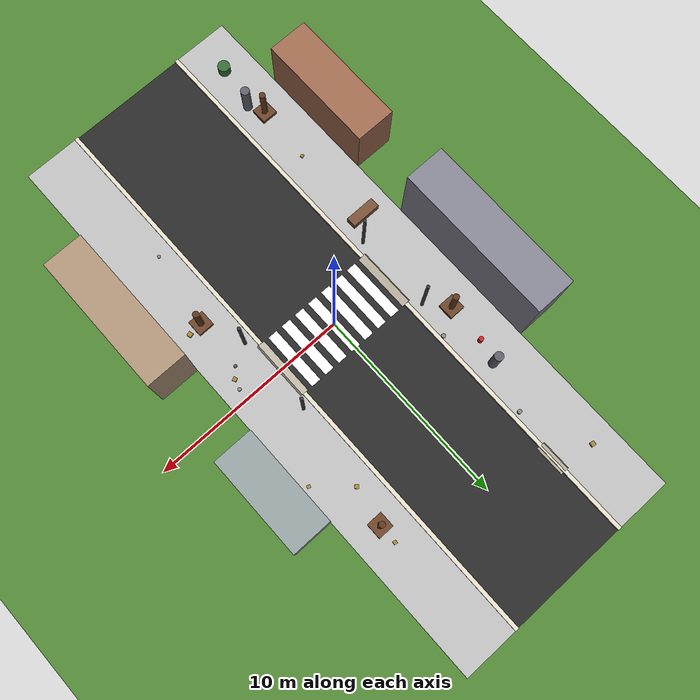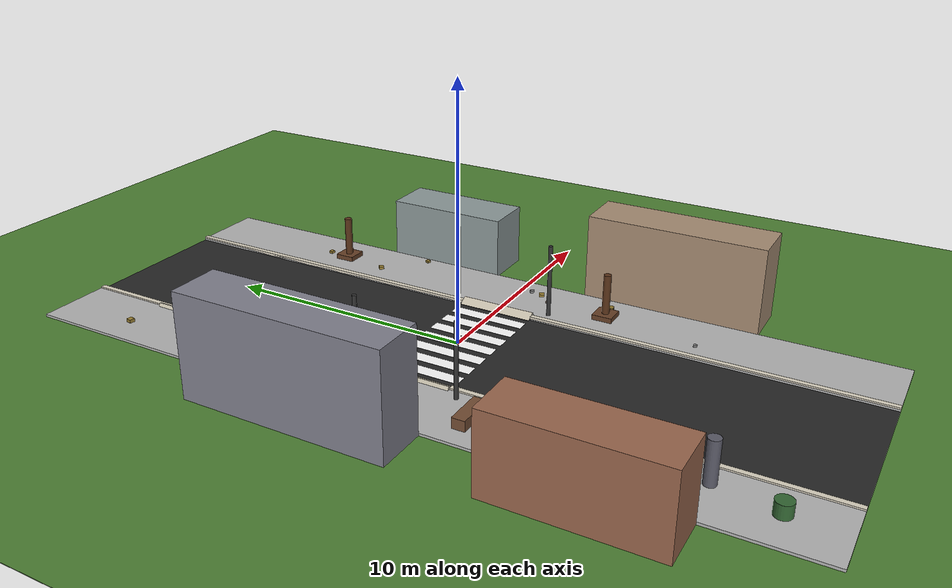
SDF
<?xml version="1.0" ?>
<sdf version="1.9">
  <world name="level2_standard">
    <physics name="1ms" type="ignore">
      <max_step_size>0.001</max_step_size>
      <real_time_factor>1.0</real_time_factor>
    </physics>
    <plugin filename="gz-sim-physics-system" name="gz::sim::systems::Physics"/>
    <plugin filename="gz-sim-scene-broadcaster-system" name="gz::sim::systems::SceneBroadcaster"/>
    <plugin filename="gz-sim-sensors-system" name="gz::sim::systems::Sensors">
      <render_engine>ogre2</render_engine>
    </plugin>
    <plugin filename="gz-sim-user-commands-system" name="gz::sim::systems::UserCommands"/>

    <light type="directional" name="sun">
      <cast_shadows>true</cast_shadows>
      <pose>0 0 10 0 0 0</pose>
      <diffuse>0.8 0.8 0.8 1</diffuse>
      <specular>0.2 0.2 0.2 1</specular>
      <attenuation><range>1000</range><constant>0.9</constant><linear>0.01</linear><quadratic>0.001</quadratic></attenuation>
      <direction>-0.5 0.1 -0.9</direction>
    </light>

    <!-- Level 2: 표준 밀도 - 정적 장애물 표준 밀도, 연석 존재 -->

    <model name="ground_plane_visual">
      <static>true</static>
      <pose>0 0 -0.01 0 0 0</pose>
      <link name="link">
        <collision name="collision"><geometry><box><size>100 100 0.02</size></box></geometry></collision>
        <visual name="visual"><geometry><box><size>100 100 0.02</size></box></geometry>
          <material><ambient>0.3 0.5 0.2 1</ambient><diffuse>0.3 0.5 0.2 1</diffuse></material></visual>
      </link>
    </model>

    <model name="road">
      <static>true</static>
      <pose>0 0 0.01 0 0 0</pose>
      <link name="link">
        <collision name="collision"><geometry><box><size>6.0 30.0 0.02</size></box></geometry></collision>
        <visual name="visual"><geometry><box><size>6.0 30.0 0.02</size></box></geometry>
          <material><ambient>0.15 0.15 0.15 1</ambient><diffuse>0.15 0.15 0.15 1</diffuse></material></visual>
      </link>
    </model>

    <model name="sidewalk_left">
      <static>true</static>
      <pose>-4.5 0 0.05 0 0 0</pose>
      <link name="link">
        <collision name="collision"><geometry><box><size>3.0 30.0 0.1</size></box></geometry></collision>
        <visual name="visual"><geometry><box><size>3.0 30.0 0.1</size></box></geometry>
          <material><ambient>0.7 0.7 0.7 1</ambient><diffuse>0.7 0.7 0.7 1</diffuse></material></visual>
      </link>
    </model>

    <model name="sidewalk_right">
      <static>true</static>
      <pose>4.5 0 0.05 0 0 0</pose>
      <link name="link">
        <collision name="collision"><geometry><box><size>3.0 30.0 0.1</size></box></geometry></collision>
        <visual name="visual"><geometry><box><size>3.0 30.0 0.1</size></box></geometry>
          <material><ambient>0.7 0.7 0.7 1</ambient><diffuse>0.7 0.7 0.7 1</diffuse></material></visual>
      </link>
    </model>

    <model name="crosswalk_1">
      <static>true</static>
      <pose>-2.4 0 0.02 0 0 0</pose>
      <link name="link">
        <collision name="collision"><geometry><box><size>0.5 3 0.01</size></box></geometry></collision>
        <visual name="visual"><geometry><box><size>0.5 3 0.01</size></box></geometry>
          <material><ambient>1 1 1 1</ambient><diffuse>1 1 1 1</diffuse></material></visual>
      </link>
    </model>

    <model name="crosswalk_2">
      <static>true</static>
      <pose>-1.6 0 0.02 0 0 0</pose>
      <link name="link">
        <collision name="collision"><geometry><box><size>0.5 3 0.01</size></box></geometry></collision>
        <visual name="visual"><geometry><box><size>0.5 3 0.01</size></box></geometry>
          <material><ambient>1 1 1 1</ambient><diffuse>1 1 1 1</diffuse></material></visual>
      </link>
    </model>

    <model name="crosswalk_3">
      <static>true</static>
      <pose>-0.8 0 0.02 0 0 0</pose>
      <link name="link">
        <collision name="collision"><geometry><box><size>0.5 3 0.01</size></box></geometry></collision>
        <visual name="visual"><geometry><box><size>0.5 3 0.01</size></box></geometry>
          <material><ambient>1 1 1 1</ambient><diffuse>1 1 1 1</diffuse></material></visual>
      </link>
    </model>

    <model name="crosswalk_4">
      <static>true</static>
      <pose>0.0 0 0.02 0 0 0</pose>
      <link name="link">
        <collision name="collision"><geometry><box><size>0.5 3 0.01</size></box></geometry></collision>
        <visual name="visual"><geometry><box><size>0.5 3 0.01</size></box></geometry>
          <material><ambient>1 1 1 1</ambient><diffuse>1 1 1 1</diffuse></material></visual>
      </link>
    </model>

    <model name="crosswalk_5">
      <static>true</static>
      <pose>0.8 0 0.02 0 0 0</pose>
      <link name="link">
        <collision name="collision"><geometry><box><size>0.5 3 0.01</size></box></geometry></collision>
        <visual name="visual"><geometry><box><size>0.5 3 0.01</size></box></geometry>
          <material><ambient>1 1 1 1</ambient><diffuse>1 1 1 1</diffuse></material></visual>
      </link>
    </model>

    <model name="crosswalk_6">
      <static>true</static>
      <pose>1.6 0 0.02 0 0 0</pose>
      <link name="link">
        <collision name="collision"><geometry><box><size>0.5 3 0.01</size></box></geometry></collision>
        <visual name="visual"><geometry><box><size>0.5 3 0.01</size></box></geometry>
          <material><ambient>1 1 1 1</ambient><diffuse>1 1 1 1</diffuse></material></visual>
      </link>
    </model>

    <model name="crosswalk_7">
      <static>true</static>
      <pose>2.4 0 0.02 0 0 0</pose>
      <link name="link">
        <collision name="collision"><geometry><box><size>0.5 3 0.01</size></box></geometry></collision>
        <visual name="visual"><geometry><box><size>0.5 3 0.01</size></box></geometry>
          <material><ambient>1 1 1 1</ambient><diffuse>1 1 1 1</diffuse></material></visual>
      </link>
    </model>

    <model name="curb_left_south">
      <static>true</static>
      <pose>-3.1 -8.25 0.08499999999999999 0 0 0</pose>
      <link name="link">
        <collision name="collision"><geometry><box><size>0.2 13.5 0.15</size></box></geometry></collision>
        <visual name="visual"><geometry><box><size>0.2 13.5 0.15</size></box></geometry>
          <material><ambient>0.85 0.82 0.75 1</ambient><diffuse>0.85 0.82 0.75 1</diffuse></material></visual>
      </link>
    </model>

    <model name="curb_left_north">
      <static>true</static>
      <pose>-3.1 8.25 0.08499999999999999 0 0 0</pose>
      <link name="link">
        <collision name="collision"><geometry><box><size>0.2 13.5 0.15</size></box></geometry></collision>
        <visual name="visual"><geometry><box><size>0.2 13.5 0.15</size></box></geometry>
          <material><ambient>0.85 0.82 0.75 1</ambient><diffuse>0.85 0.82 0.75 1</diffuse></material></visual>
      </link>
    </model>

    <model name="curb_right_south">
      <static>true</static>
      <pose>3.1 -8.25 0.08499999999999999 0 0 0</pose>
      <link name="link">
        <collision name="collision"><geometry><box><size>0.2 13.5 0.15</size></box></geometry></collision>
        <visual name="visual"><geometry><box><size>0.2 13.5 0.15</size></box></geometry>
          <material><ambient>0.85 0.82 0.75 1</ambient><diffuse>0.85 0.82 0.75 1</diffuse></material></visual>
      </link>
    </model>

    <model name="curb_right_north">
      <static>true</static>
      <pose>3.1 8.25 0.08499999999999999 0 0 0</pose>
      <link name="link">
        <collision name="collision"><geometry><box><size>0.2 13.5 0.15</size></box></geometry></collision>
        <visual name="visual"><geometry><box><size>0.2 13.5 0.15</size></box></geometry>
          <material><ambient>0.85 0.82 0.75 1</ambient><diffuse>0.85 0.82 0.75 1</diffuse></material></visual>
      </link>
    </model>

    <model name="curb_ramp_left">
      <static>true</static>
      <pose>-3.1 0 0.075 0 0.5 0</pose>
      <link name="link">
        <collision name="collision"><geometry><box><size>0.4 3 0.15</size></box></geometry></collision>
        <visual name="visual"><geometry><box><size>0.4 3 0.15</size></box></geometry>
          <material><ambient>0.75 0.72 0.65 1</ambient><diffuse>0.75 0.72 0.65 1</diffuse></material></visual>
      </link>
    </model>

    <model name="curb_ramp_right">
      <static>true</static>
      <pose>3.1 0 0.075 0 -0.5 0</pose>
      <link name="link">
        <collision name="collision"><geometry><box><size>0.4 3 0.15</size></box></geometry></collision>
        <visual name="visual"><geometry><box><size>0.4 3 0.15</size></box></geometry>
          <material><ambient>0.75 0.72 0.65 1</ambient><diffuse>0.75 0.72 0.65 1</diffuse></material></visual>
      </link>
    </model>

    <model name="curb_extra_ramp_0">
      <static>true</static>
      <pose>-3.1 10.94 0.075 0 0.5 0</pose>
      <link name="link">
        <collision name="collision"><geometry><box><size>0.4 1.5 0.15</size></box></geometry></collision>
        <visual name="visual"><geometry><box><size>0.4 1.5 0.15</size></box></geometry>
          <material><ambient>0.75 0.72 0.65 1</ambient><diffuse>0.75 0.72 0.65 1</diffuse></material></visual>
      </link>
    </model>

    <model name="building_left_1">
      <static>true</static>
      <pose>-7.0 -8 1.5 0 0 0</pose>
      <link name="link">
        <collision name="collision"><geometry><box><size>2 6 3</size></box></geometry></collision>
        <visual name="visual"><geometry><box><size>2 6 3</size></box></geometry>
          <material><ambient>0.6 0.4 0.3 1</ambient><diffuse>0.6 0.4 0.3 1</diffuse></material></visual>
      </link>
    </model>

    <model name="building_left_2">
      <static>true</static>
      <pose>-7.0 2 2 0 0 0</pose>
      <link name="link">
        <collision name="collision"><geometry><box><size>2 8 4</size></box></geometry></collision>
        <visual name="visual"><geometry><box><size>2 8 4</size></box></geometry>
          <material><ambient>0.5 0.5 0.55 1</ambient><diffuse>0.5 0.5 0.55 1</diffuse></material></visual>
      </link>
    </model>

    <model name="building_right_1">
      <static>true</static>
      <pose>7.0 -6 1.75 0 0 0</pose>
      <link name="link">
        <collision name="collision"><geometry><box><size>2 7 3.5</size></box></geometry></collision>
        <visual name="visual"><geometry><box><size>2 7 3.5</size></box></geometry>
          <material><ambient>0.65 0.55 0.45 1</ambient><diffuse>0.65 0.55 0.45 1</diffuse></material></visual>
      </link>
    </model>

    <model name="building_right_2">
      <static>true</static>
      <pose>7.0 4 1.25 0 0 0</pose>
      <link name="link">
        <collision name="collision"><geometry><box><size>2 5 2.5</size></box></geometry></collision>
        <visual name="visual"><geometry><box><size>2 5 2.5</size></box></geometry>
          <material><ambient>0.55 0.6 0.6 1</ambient><diffuse>0.55 0.6 0.6 1</diffuse></material></visual>
      </link>
    </model>

    <model name="tree_1">
      <static>true</static>
      <pose>-4.5 -10 0.15 0 0 0</pose>
      <link name="link">
        <collision name="collision"><geometry><box><size>0.8 0.8 0.3</size></box></geometry></collision>
        <visual name="visual"><geometry><box><size>0.8 0.8 0.3</size></box></geometry>
          <material><ambient>0.4 0.25 0.15 1</ambient><diffuse>0.4 0.25 0.15 1</diffuse></material></visual>
      </link>
    </model>

    <model name="tree_1_trunk">
      <static>true</static>
      <pose>-4.5 -10 1.1 0 0 0</pose>
      <link name="link">
        <collision name="collision"><geometry><cylinder><radius>0.15</radius><length>1.6</length></cylinder></geometry></collision>
        <visual name="visual"><geometry><cylinder><radius>0.15</radius><length>1.6</length></cylinder></geometry>
          <material><ambient>0.35 0.2 0.1 1</ambient><diffuse>0.35 0.2 0.1 1</diffuse></material></visual>
      </link>
    </model>

    <model name="tree_2">
      <static>true</static>
      <pose>4.5 -4 0.15 0 0 0</pose>
      <link name="link">
        <collision name="collision"><geometry><box><size>0.8 0.8 0.3</size></box></geometry></collision>
        <visual name="visual"><geometry><box><size>0.8 0.8 0.3</size></box></geometry>
          <material><ambient>0.4 0.25 0.15 1</ambient><diffuse>0.4 0.25 0.15 1</diffuse></material></visual>
      </link>
    </model>

    <model name="tree_2_trunk">
      <static>true</static>
      <pose>4.5 -4 1.1 0 0 0</pose>
      <link name="link">
        <collision name="collision"><geometry><cylinder><radius>0.15</radius><length>1.6</length></cylinder></geometry></collision>
        <visual name="visual"><geometry><cylinder><radius>0.15</radius><length>1.6</length></cylinder></geometry>
          <material><ambient>0.35 0.2 0.1 1</ambient><diffuse>0.35 0.2 0.1 1</diffuse></material></visual>
      </link>
    </model>

    <model name="tree_3">
      <static>true</static>
      <pose>-4.5 3 0.15 0 0 0</pose>
      <link name="link">
        <collision name="collision"><geometry><box><size>0.8 0.8 0.3</size></box></geometry></collision>
        <visual name="visual"><geometry><box><size>0.8 0.8 0.3</size></box></geometry>
          <material><ambient>0.4 0.25 0.15 1</ambient><diffuse>0.4 0.25 0.15 1</diffuse></material></visual>
      </link>
    </model>

    <model name="tree_3_trunk">
      <static>true</static>
      <pose>-4.5 3 1.1 0 0 0</pose>
      <link name="link">
        <collision name="collision"><geometry><cylinder><radius>0.15</radius><length>1.6</length></cylinder></geometry></collision>
        <visual name="visual"><geometry><cylinder><radius>0.15</radius><length>1.6</length></cylinder></geometry>
          <material><ambient>0.35 0.2 0.1 1</ambient><diffuse>0.35 0.2 0.1 1</diffuse></material></visual>
      </link>
    </model>

    <model name="tree_4">
      <static>true</static>
      <pose>4.5 8 0.15 0 0 0</pose>
      <link name="link">
        <collision name="collision"><geometry><box><size>0.8 0.8 0.3</size></box></geometry></collision>
        <visual name="visual"><geometry><box><size>0.8 0.8 0.3</size></box></geometry>
          <material><ambient>0.4 0.25 0.15 1</ambient><diffuse>0.4 0.25 0.15 1</diffuse></material></visual>
      </link>
    </model>

    <model name="tree_4_trunk">
      <static>true</static>
      <pose>4.5 8 1.1 0 0 0</pose>
      <link name="link">
        <collision name="collision"><geometry><cylinder><radius>0.15</radius><length>1.6</length></cylinder></geometry></collision>
        <visual name="visual"><geometry><cylinder><radius>0.15</radius><length>1.6</length></cylinder></geometry>
          <material><ambient>0.35 0.2 0.1 1</ambient><diffuse>0.35 0.2 0.1 1</diffuse></material></visual>
      </link>
    </model>

    <model name="bench_1">
      <static>true</static>
      <pose>-4.5 -3 0.25 0 0 0</pose>
      <link name="link">
        <collision name="collision"><geometry><box><size>1.5 0.5 0.5</size></box></geometry></collision>
        <visual name="visual"><geometry><box><size>1.5 0.5 0.5</size></box></geometry>
          <material><ambient>0.45 0.3 0.2 1</ambient><diffuse>0.45 0.3 0.2 1</diffuse></material></visual>
      </link>
    </model>

    <model name="trash_bin_1">
      <static>true</static>
      <pose>-4.5 -13 0.3 0 0 0</pose>
      <link name="link">
        <collision name="collision"><geometry><cylinder><radius>0.3</radius><length>0.6</length></cylinder></geometry></collision>
        <visual name="visual"><geometry><cylinder><radius>0.3</radius><length>0.6</length></cylinder></geometry>
          <material><ambient>0.2 0.4 0.2 1</ambient><diffuse>0.2 0.4 0.2 1</diffuse></material></visual>
      </link>
    </model>

    <model name="hydrant_1">
      <static>true</static>
      <pose>-4.4 5 0.25 0 0 0</pose>
      <link name="link">
        <collision name="collision"><geometry><cylinder><radius>0.12</radius><length>0.5</length></cylinder></geometry></collision>
        <visual name="visual"><geometry><cylinder><radius>0.12</radius><length>0.5</length></cylinder></geometry>
          <material><ambient>0.8 0.1 0.1 1</ambient><diffuse>0.8 0.1 0.1 1</diffuse></material></visual>
      </link>
    </model>

    <model name="traffic_light_1">
      <static>true</static>
      <pose>-3.6 -2 1.5 0 0 0</pose>
      <link name="link">
        <collision name="collision"><geometry><cylinder><radius>0.08</radius><length>3</length></cylinder></geometry></collision>
        <visual name="visual"><geometry><cylinder><radius>0.08</radius><length>3</length></cylinder></geometry>
          <material><ambient>0.2 0.2 0.2 1</ambient><diffuse>0.2 0.2 0.2 1</diffuse></material></visual>
      </link>
    </model>

    <model name="traffic_light_2">
      <static>true</static>
      <pose>3.6 2 1.5 0 0 0</pose>
      <link name="link">
        <collision name="collision"><geometry><cylinder><radius>0.08</radius><length>3</length></cylinder></geometry></collision>
        <visual name="visual"><geometry><cylinder><radius>0.08</radius><length>3</length></cylinder></geometry>
          <material><ambient>0.2 0.2 0.2 1</ambient><diffuse>0.2 0.2 0.2 1</diffuse></material></visual>
      </link>
    </model>

    <model name="traffic_light_3">
      <static>true</static>
      <pose>-3.6 2 1.5 0 0 0</pose>
      <link name="link">
        <collision name="collision"><geometry><cylinder><radius>0.08</radius><length>3</length></cylinder></geometry></collision>
        <visual name="visual"><geometry><cylinder><radius>0.08</radius><length>3</length></cylinder></geometry>
          <material><ambient>0.2 0.2 0.2 1</ambient><diffuse>0.2 0.2 0.2 1</diffuse></material></visual>
      </link>
    </model>

    <model name="traffic_light_4">
      <static>true</static>
      <pose>3.6 -2 1.5 0 0 0</pose>
      <link name="link">
        <collision name="collision"><geometry><cylinder><radius>0.08</radius><length>3</length></cylinder></geometry></collision>
        <visual name="visual"><geometry><cylinder><radius>0.08</radius><length>3</length></cylinder></geometry>
          <material><ambient>0.2 0.2 0.2 1</ambient><diffuse>0.2 0.2 0.2 1</diffuse></material></visual>
      </link>
    </model>

    <model name="pedestrian_static_0">
      <static>true</static>
      <pose>-4.10 -10.79 0.85 0 0 0</pose>
      <link name="link">
        <collision name="collision"><geometry><cylinder><radius>0.22</radius><length>1.7</length></cylinder></geometry></collision>
        <visual name="visual"><geometry><cylinder><radius>0.22</radius><length>1.7</length></cylinder></geometry>
          <material><ambient>0.35 0.35 0.4 1</ambient><diffuse>0.35 0.35 0.4 1</diffuse></material></visual>
      </link>
    </model>

    <model name="pedestrian_static_1">
      <static>true</static>
      <pose>-4.10 6.14 0.85 0 0 0</pose>
      <link name="link">
        <collision name="collision"><geometry><cylinder><radius>0.22</radius><length>1.7</length></cylinder></geometry></collision>
        <visual name="visual"><geometry><cylinder><radius>0.22</radius><length>1.7</length></cylinder></geometry>
          <material><ambient>0.35 0.35 0.4 1</ambient><diffuse>0.35 0.35 0.4 1</diffuse></material></visual>
      </link>
    </model>

    <model name="obstacle_0">
      <static>true</static>
      <pose>3.90 -7.77 0.10 0 0 0</pose>
      <link name="link">
        <collision name="collision"><geometry><cylinder><radius>0.07625070546077296</radius><length>0.15250141092154593</length></cylinder></geometry></collision>
        <visual name="visual"><geometry><cylinder><radius>0.07625070546077296</radius><length>0.15250141092154593</length></cylinder></geometry>
          <material><ambient>0.5 0.5 0.5 1</ambient><diffuse>0.5 0.5 0.5 1</diffuse></material></visual>
      </link>
    </model>

    <model name="obstacle_1">
      <static>true</static>
      <pose>-3.30 3.74 0.12 0 0 0</pose>
      <link name="link">
        <collision name="collision"><geometry><cylinder><radius>0.10312843051035273</radius><length>0.20625686102070545</length></cylinder></geometry></collision>
        <visual name="visual"><geometry><cylinder><radius>0.10312843051035273</radius><length>0.20625686102070545</length></cylinder></geometry>
          <material><ambient>0.5 0.5 0.5 1</ambient><diffuse>0.5 0.5 0.5 1</diffuse></material></visual>
      </link>
    </model>

    <model name="obstacle_2">
      <static>true</static>
      <pose>4.61 -1.49 0.10 0 0 0</pose>
      <link name="link">
        <collision name="collision"><geometry><sphere><radius>0.08438842595772648</radius></sphere></geometry></collision>
        <visual name="visual"><geometry><sphere><radius>0.08438842595772648</radius></sphere></geometry>
          <material><ambient>0.4 0.35 0.3 1</ambient><diffuse>0.4 0.35 0.3 1</diffuse></material></visual>
      </link>
    </model>

    <model name="obstacle_3">
      <static>true</static>
      <pose>-4.83 11.66 0.13 0 0 1.40</pose>
      <link name="link">
        <collision name="collision"><geometry><box><size>0.21 0.21 0.21</size></box></geometry></collision>
        <visual name="visual"><geometry><box><size>0.21 0.21 0.21</size></box></geometry>
          <material><ambient>0.6 0.5 0.2 1</ambient><diffuse>0.6 0.5 0.2 1</diffuse></material></visual>
      </link>
    </model>

    <model name="obstacle_4">
      <static>true</static>
      <pose>-4.35 -7.12 0.10 0 0 0.27</pose>
      <link name="link">
        <collision name="collision"><geometry><box><size>0.15 0.15 0.15</size></box></geometry></collision>
        <visual name="visual"><geometry><box><size>0.15 0.15 0.15</size></box></geometry>
          <material><ambient>0.6 0.5 0.2 1</ambient><diffuse>0.6 0.5 0.2 1</diffuse></material></visual>
      </link>
    </model>

    <model name="obstacle_5">
      <static>true</static>
      <pose>5.70 4.71 0.10 0 0 1.25</pose>
      <link name="link">
        <collision name="collision"><geometry><box><size>0.16 0.16 0.16</size></box></geometry></collision>
        <visual name="visual"><geometry><box><size>0.16 0.16 0.16</size></box></geometry>
          <material><ambient>0.6 0.5 0.2 1</ambient><diffuse>0.6 0.5 0.2 1</diffuse></material></visual>
      </link>
    </model>

    <model name="obstacle_6">
      <static>true</static>
      <pose>5.20 -3.95 0.13 0 0 0.25</pose>
      <link name="link">
        <collision name="collision"><geometry><box><size>0.22 0.22 0.22</size></box></geometry></collision>
        <visual name="visual"><geometry><box><size>0.22 0.22 0.22</size></box></geometry>
          <material><ambient>0.6 0.5 0.2 1</ambient><diffuse>0.6 0.5 0.2 1</diffuse></material></visual>
      </link>
    </model>

    <model name="obstacle_7">
      <static>true</static>
      <pose>5.02 -1.04 0.11 0 0 0.44</pose>
      <link name="link">
        <collision name="collision"><geometry><box><size>0.19 0.19 0.19</size></box></geometry></collision>
        <visual name="visual"><geometry><box><size>0.19 0.19 0.19</size></box></geometry>
          <material><ambient>0.6 0.5 0.2 1</ambient><diffuse>0.6 0.5 0.2 1</diffuse></material></visual>
      </link>
    </model>

    <model name="obstacle_8">
      <static>true</static>
      <pose>4.50 8.95 0.11 0 0 1.41</pose>
      <link name="link">
        <collision name="collision"><geometry><box><size>0.17 0.17 0.17</size></box></geometry></collision>
        <visual name="visual"><geometry><box><size>0.17 0.17 0.17</size></box></geometry>
          <material><ambient>0.6 0.5 0.2 1</ambient><diffuse>0.6 0.5 0.2 1</diffuse></material></visual>
      </link>
    </model>

    <model name="obstacle_9">
      <static>true</static>
      <pose>4.14 6.10 0.11 0 0 0.76</pose>
      <link name="link">
        <collision name="collision"><geometry><box><size>0.19 0.19 0.19</size></box></geometry></collision>
        <visual name="visual"><geometry><box><size>0.19 0.19 0.19</size></box></geometry>
          <material><ambient>0.6 0.5 0.2 1</ambient><diffuse>0.6 0.5 0.2 1</diffuse></material></visual>
      </link>
    </model>

    <model name="obstacle_10">
      <static>true</static>
      <pose>-3.44 8.50 0.12 0 0 0</pose>
      <link name="link">
        <collision name="collision"><geometry><cylinder><radius>0.1042259239838454</radius><length>0.2084518479676908</length></cylinder></geometry></collision>
        <visual name="visual"><geometry><cylinder><radius>0.1042259239838454</radius><length>0.2084518479676908</length></cylinder></geometry>
          <material><ambient>0.5 0.5 0.5 1</ambient><diffuse>0.5 0.5 0.5 1</diffuse></material></visual>
      </link>
    </model>

    <model name="obstacle_11">
      <static>true</static>
      <pose>5.16 -0.55 0.11 0 0 0</pose>
      <link name="link">
        <collision name="collision"><geometry><cylinder><radius>0.08561538605770215</radius><length>0.1712307721154043</length></cylinder></geometry></collision>
        <visual name="visual"><geometry><cylinder><radius>0.08561538605770215</radius><length>0.1712307721154043</length></cylinder></geometry>
          <material><ambient>0.5 0.5 0.5 1</ambient><diffuse>0.5 0.5 0.5 1</diffuse></material></visual>
      </link>
    </model>

  </world>
</sdf>
